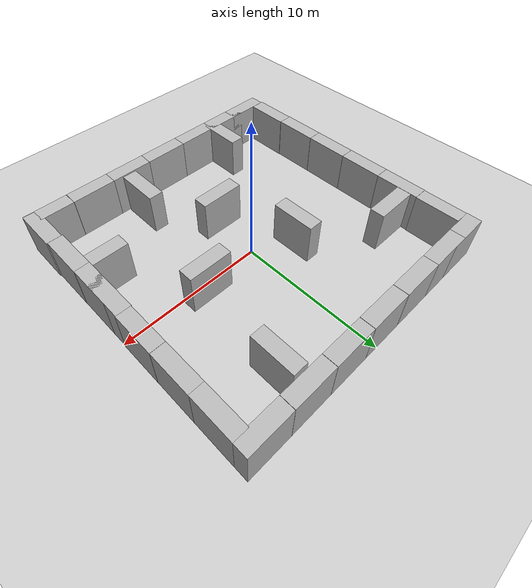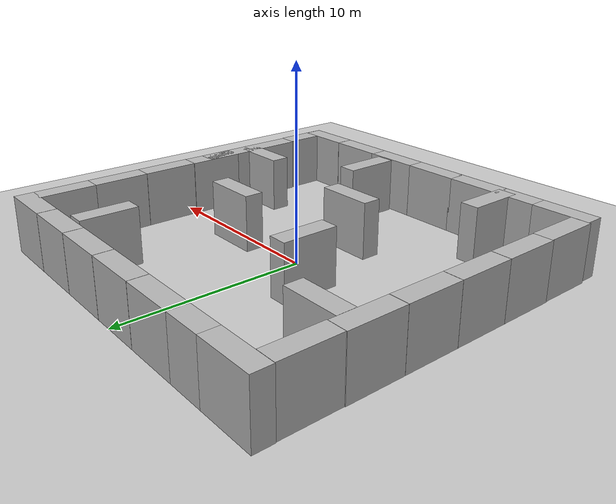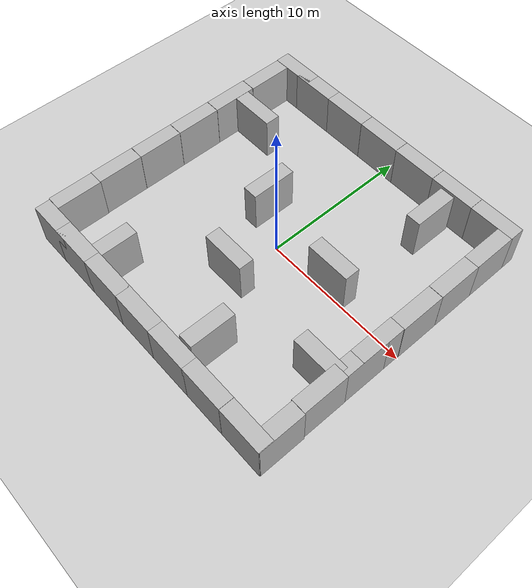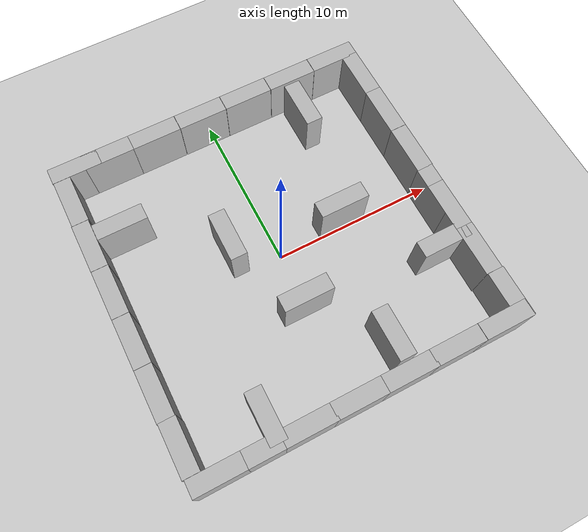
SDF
<sdf version="1.7">
 <world name="default">
  <model name="ground_plane">
   <static>1</static>
   <link name="link">
    <collision name="collision">
     <geometry><plane><normal>0 0 1</normal><size>100 100</size></plane></geometry>
     <surface>
      <contact><collide_bitmask>65535</collide_bitmask></contact>
      <friction><ode><mu>100</mu><mu2>50</mu2></ode></friction>
     </surface>
    </collision>
    <visual name="visual">
     <cast_shadows>0</cast_shadows>
     <geometry><plane><normal>0 0 1</normal><size>100 100</size></plane></geometry>
     <material>
      <script><uri>file://media/materials/scripts/gazebo.material</uri><name>Gazebo/Grey</name></script>
     </material>
    </visual>
   </link>
  </model>
  <model name="brick_box_3x1x3">
   <static>1</static>
   <link name="chassis">
    <pose>0 0 1.5 0 -0 0</pose>
    <collision name="collision"><geometry><box><size>3 1 3</size></box></geometry></collision>
    <visual name="visual">
     <geometry><mesh><uri>model://brick_box_3x1x3/meshes/simple_box.dae</uri><scale>3 1 3</scale></mesh></geometry>
     <material>
      <script>
       <uri>model://brick_box_3x1x3/materials/scripts</uri>
       <uri>model://brick_box_3x1x3/materials/textures</uri>
       <name>BrickBox/Diffuse</name>
      </script>
     </material>
    </visual>
   </link>
   <pose>8.4883 9.49696 0 0 -0 0</pose>
  </model>
  <model name="brick_box_3x1x3_0">
   <static>1</static>
   <link name="chassis">
    <pose>0 0 1.5 0 -0 0</pose>
    <collision name="collision"><geometry><box><size>3 1 3</size></box></geometry></collision>
    <visual name="visual">
     <geometry><mesh><uri>model://brick_box_3x1x3/meshes/simple_box.dae</uri><scale>3 1 3</scale></mesh></geometry>
     <material>
      <script>
       <uri>model://brick_box_3x1x3/materials/scripts</uri>
       <uri>model://brick_box_3x1x3/materials/textures</uri>
       <name>BrickBox/Diffuse</name>
      </script>
     </material>
    </visual>
   </link>
   <pose>5.47783 9.49696 0 0 -0 0</pose>
  </model>
  <model name="brick_box_3x1x3_1">
   <static>1</static>
   <link name="chassis">
    <pose>0 0 1.5 0 -0 0</pose>
    <collision name="collision"><geometry><box><size>3 1 3</size></box></geometry></collision>
    <visual name="visual">
     <geometry><mesh><uri>model://brick_box_3x1x3/meshes/simple_box.dae</uri><scale>3 1 3</scale></mesh></geometry>
     <material>
      <script>
       <uri>model://brick_box_3x1x3/materials/scripts</uri>
       <uri>model://brick_box_3x1x3/materials/textures</uri>
       <name>BrickBox/Diffuse</name>
      </script>
     </material>
    </visual>
   </link>
   <pose>2.46735 9.49696 0 0 -0 0</pose>
  </model>
  <model name="brick_box_3x1x3_2">
   <static>1</static>
   <link name="chassis">
    <pose>0 0 1.5 0 -0 0</pose>
    <collision name="collision"><geometry><box><size>3 1 3</size></box></geometry></collision>
    <visual name="visual">
     <geometry><mesh><uri>model://brick_box_3x1x3/meshes/simple_box.dae</uri><scale>3 1 3</scale></mesh></geometry>
     <material>
      <script>
       <uri>model://brick_box_3x1x3/materials/scripts</uri>
       <uri>model://brick_box_3x1x3/materials/textures</uri>
       <name>BrickBox/Diffuse</name>
      </script>
     </material>
    </visual>
   </link>
   <pose>-0.543123 9.49696 0 0 -0 0</pose>
  </model>
  <model name="brick_box_3x1x3_3">
   <static>1</static>
   <link name="chassis">
    <pose>0 0 1.5 0 -0 0</pose>
    <collision name="collision"><geometry><box><size>3 1 3</size></box></geometry></collision>
    <visual name="visual">
     <geometry><mesh><uri>model://brick_box_3x1x3/meshes/simple_box.dae</uri><scale>3 1 3</scale></mesh></geometry>
     <material>
      <script>
       <uri>model://brick_box_3x1x3/materials/scripts</uri>
       <uri>model://brick_box_3x1x3/materials/textures</uri>
       <name>BrickBox/Diffuse</name>
      </script>
     </material>
    </visual>
   </link>
   <pose>-3.5536 9.49696 0 0 -0 0</pose>
  </model>
  <model name="brick_box_3x1x3_4">
   <static>1</static>
   <link name="chassis">
    <pose>0 0 1.5 0 -0 0</pose>
    <collision name="collision"><geometry><box><size>3 1 3</size></box></geometry></collision>
    <visual name="visual">
     <geometry><mesh><uri>model://brick_box_3x1x3/meshes/simple_box.dae</uri><scale>3 1 3</scale></mesh></geometry>
     <material>
      <script>
       <uri>model://brick_box_3x1x3/materials/scripts</uri>
       <uri>model://brick_box_3x1x3/materials/textures</uri>
       <name>BrickBox/Diffuse</name>
      </script>
     </material>
    </visual>
   </link>
   <pose>-6.53304 9.49696 0 0 -0 0</pose>
  </model>
  <model name="brick_box_3x1x3_5">
   <static>1</static>
   <link name="chassis">
    <pose>0 0 1.5 0 -0 0</pose>
    <collision name="collision"><geometry><box><size>3 1 3</size></box></geometry></collision>
    <visual name="visual">
     <geometry><mesh><uri>model://brick_box_3x1x3/meshes/simple_box.dae</uri><scale>3 1 3</scale></mesh></geometry>
     <material>
      <script>
       <uri>model://brick_box_3x1x3/materials/scripts</uri>
       <uri>model://brick_box_3x1x3/materials/textures</uri>
       <name>BrickBox/Diffuse</name>
      </script>
     </material>
    </visual>
   </link>
   <pose>-8.55037 9.49697 0 0 -0 0</pose>
  </model>
  <model name="brick_box_3x1x3_6">
   <static>1</static>
   <link name="chassis">
    <pose>0 0 1.5 0 -0 0</pose>
    <collision name="collision"><geometry><box><size>3 1 3</size></box></geometry></collision>
    <visual name="visual">
     <geometry><mesh><uri>model://brick_box_3x1x3/meshes/simple_box.dae</uri><scale>3 1 3</scale></mesh></geometry>
     <material>
      <script>
       <uri>model://brick_box_3x1x3/materials/scripts</uri>
       <uri>model://brick_box_3x1x3/materials/textures</uri>
       <name>BrickBox/Diffuse</name>
      </script>
     </material>
    </visual>
   </link>
   <pose>8.48829 -9.528 0 0 -0 0</pose>
  </model>
  <model name="brick_box_3x1x3_7">
   <static>1</static>
   <link name="chassis">
    <pose>0 0 1.5 0 -0 0</pose>
    <collision name="collision"><geometry><box><size>3 1 3</size></box></geometry></collision>
    <visual name="visual">
     <geometry><mesh><uri>model://brick_box_3x1x3/meshes/simple_box.dae</uri><scale>3 1 3</scale></mesh></geometry>
     <material>
      <script>
       <uri>model://brick_box_3x1x3/materials/scripts</uri>
       <uri>model://brick_box_3x1x3/materials/textures</uri>
       <name>BrickBox/Diffuse</name>
      </script>
     </material>
    </visual>
   </link>
   <pose>5.47782 -9.528 0 0 -0 0</pose>
  </model>
  <model name="brick_box_3x1x3_8">
   <static>1</static>
   <link name="chassis">
    <pose>0 0 1.5 0 -0 0</pose>
    <collision name="collision"><geometry><box><size>3 1 3</size></box></geometry></collision>
    <visual name="visual">
     <geometry><mesh><uri>model://brick_box_3x1x3/meshes/simple_box.dae</uri><scale>3 1 3</scale></mesh></geometry>
     <material>
      <script>
       <uri>model://brick_box_3x1x3/materials/scripts</uri>
       <uri>model://brick_box_3x1x3/materials/textures</uri>
       <name>BrickBox/Diffuse</name>
      </script>
     </material>
    </visual>
   </link>
   <pose>2.56045 -9.528 0 0 -0 0</pose>
  </model>
  <model name="brick_box_3x1x3_9">
   <static>1</static>
   <link name="chassis">
    <pose>0 0 1.5 0 -0 0</pose>
    <collision name="collision"><geometry><box><size>3 1 3</size></box></geometry></collision>
    <visual name="visual">
     <geometry><mesh><uri>model://brick_box_3x1x3/meshes/simple_box.dae</uri><scale>3 1 3</scale></mesh></geometry>
     <material>
      <script>
       <uri>model://brick_box_3x1x3/materials/scripts</uri>
       <uri>model://brick_box_3x1x3/materials/textures</uri>
       <name>BrickBox/Diffuse</name>
      </script>
     </material>
    </visual>
   </link>
   <pose>-0.418988 -9.528 0 0 -0 0</pose>
  </model>
  <model name="brick_box_3x1x3_10">
   <static>1</static>
   <link name="chassis">
    <pose>0 0 1.5 0 -0 0</pose>
    <collision name="collision"><geometry><box><size>3 1 3</size></box></geometry></collision>
    <visual name="visual">
     <geometry><mesh><uri>model://brick_box_3x1x3/meshes/simple_box.dae</uri><scale>3 1 3</scale></mesh></geometry>
     <material>
      <script>
       <uri>model://brick_box_3x1x3/materials/scripts</uri>
       <uri>model://brick_box_3x1x3/materials/textures</uri>
       <name>BrickBox/Diffuse</name>
      </script>
     </material>
    </visual>
   </link>
   <pose>-3.33635 -9.528 0 0 -0 0</pose>
  </model>
  <model name="brick_box_3x1x3_11">
   <static>1</static>
   <link name="chassis">
    <pose>0 0 1.5 0 -0 0</pose>
    <collision name="collision"><geometry><box><size>3 1 3</size></box></geometry></collision>
    <visual name="visual">
     <geometry><mesh><uri>model://brick_box_3x1x3/meshes/simple_box.dae</uri><scale>3 1 3</scale></mesh></geometry>
     <material>
      <script>
       <uri>model://brick_box_3x1x3/materials/scripts</uri>
       <uri>model://brick_box_3x1x3/materials/textures</uri>
       <name>BrickBox/Diffuse</name>
      </script>
     </material>
    </visual>
   </link>
   <pose>-6.22269 -9.528 0 0 -0 0</pose>
  </model>
  <model name="brick_box_3x1x3_12">
   <static>1</static>
   <link name="chassis">
    <pose>0 0 1.5 0 -0 0</pose>
    <collision name="collision"><geometry><box><size>3 1 3</size></box></geometry></collision>
    <visual name="visual">
     <geometry><mesh><uri>model://brick_box_3x1x3/meshes/simple_box.dae</uri><scale>3 1 3</scale></mesh></geometry>
     <material>
      <script>
       <uri>model://brick_box_3x1x3/materials/scripts</uri>
       <uri>model://brick_box_3x1x3/materials/textures</uri>
       <name>BrickBox/Diffuse</name>
      </script>
     </material>
    </visual>
   </link>
   <pose>-8.42623 -9.528 0 0 -0 0</pose>
  </model>
  <model name="brick_box_3x1x3_5_clone_clone">
   <static>1</static>
   <link name="chassis">
    <pose>0 0 1.5 0 -0 0</pose>
    <collision name="collision"><geometry><box><size>3 1 3</size></box></geometry></collision>
    <visual name="visual">
     <geometry><mesh><uri>model://brick_box_3x1x3/meshes/simple_box.dae</uri><scale>3 1 3</scale></mesh></geometry>
     <material>
      <script>
       <uri>model://brick_box_3x1x3/materials/scripts</uri>
       <uri>model://brick_box_3x1x3/materials/textures</uri>
       <name>BrickBox/Diffuse</name>
      </script>
     </material>
    </visual>
   </link>
   <pose>-9.52076 7.4886 0 0 -0 1.57</pose>
  </model>
  <model name="brick_box_3x1x3_5_clone_clone_clone">
   <static>1</static>
   <link name="chassis">
    <pose>0 0 1.5 0 -0 0</pose>
    <collision name="collision"><geometry><box><size>3 1 3</size></box></geometry></collision>
    <visual name="visual">
     <geometry><mesh><uri>model://brick_box_3x1x3/meshes/simple_box.dae</uri><scale>3 1 3</scale></mesh></geometry>
     <material>
      <script>
       <uri>model://brick_box_3x1x3/materials/scripts</uri>
       <uri>model://brick_box_3x1x3/materials/textures</uri>
       <name>BrickBox/Diffuse</name>
      </script>
     </material>
    </visual>
   </link>
   <pose>-9.55276 4.48036 0 0 -0 1.57</pose>
  </model>
  <model name="brick_box_3x1x3_5_clone_clone_clone_clone">
   <static>1</static>
   <link name="chassis">
    <pose>0 0 1.5 0 -0 0</pose>
    <collision name="collision"><geometry><box><size>3 1 3</size></box></geometry></collision>
    <visual name="visual">
     <geometry><mesh><uri>model://brick_box_3x1x3/meshes/simple_box.dae</uri><scale>3 1 3</scale></mesh></geometry>
     <material>
      <script>
       <uri>model://brick_box_3x1x3/materials/scripts</uri>
       <uri>model://brick_box_3x1x3/materials/textures</uri>
       <name>BrickBox/Diffuse</name>
      </script>
     </material>
    </visual>
   </link>
   <pose>-9.55276 1.47212 0 0 -0 1.57</pose>
  </model>
  <model name="brick_box_3x1x3_5_clone_clone_clone_clone_0">
   <static>1</static>
   <link name="chassis">
    <pose>0 0 1.5 0 -0 0</pose>
    <collision name="collision"><geometry><box><size>3 1 3</size></box></geometry></collision>
    <visual name="visual">
     <geometry><mesh><uri>model://brick_box_3x1x3/meshes/simple_box.dae</uri><scale>3 1 3</scale></mesh></geometry>
     <material>
      <script>
       <uri>model://brick_box_3x1x3/materials/scripts</uri>
       <uri>model://brick_box_3x1x3/materials/textures</uri>
       <name>BrickBox/Diffuse</name>
      </script>
     </material>
    </visual>
   </link>
   <pose>-9.55276 -1.53612 0 0 -0 1.57</pose>
  </model>
  <model name="brick_box_3x1x3_5_clone_clone_clone_clone_1">
   <static>1</static>
   <link name="chassis">
    <pose>0 0 1.5 0 -0 0</pose>
    <collision name="collision"><geometry><box><size>3 1 3</size></box></geometry></collision>
    <visual name="visual">
     <geometry><mesh><uri>model://brick_box_3x1x3/meshes/simple_box.dae</uri><scale>3 1 3</scale></mesh></geometry>
     <material>
      <script>
       <uri>model://brick_box_3x1x3/materials/scripts</uri>
       <uri>model://brick_box_3x1x3/materials/textures</uri>
       <name>BrickBox/Diffuse</name>
      </script>
     </material>
    </visual>
   </link>
   <pose>-9.55276 -4.54436 0 0 -0 1.57</pose>
  </model>
  <model name="brick_box_3x1x3_5_clone_clone_clone_clone_2">
   <static>1</static>
   <link name="chassis">
    <pose>0 0 1.5 0 -0 0</pose>
    <collision name="collision"><geometry><box><size>3 1 3</size></box></geometry></collision>
    <visual name="visual">
     <geometry><mesh><uri>model://brick_box_3x1x3/meshes/simple_box.dae</uri><scale>3 1 3</scale></mesh></geometry>
     <material>
      <script>
       <uri>model://brick_box_3x1x3/materials/scripts</uri>
       <uri>model://brick_box_3x1x3/materials/textures</uri>
       <name>BrickBox/Diffuse</name>
      </script>
     </material>
    </visual>
   </link>
   <pose>-9.52076 -7.5206 0 0 -0 1.57</pose>
  </model>
  <model name="brick_box_3x1x3_5_clone_clone_clone_clone_3">
   <static>1</static>
   <link name="chassis">
    <pose>0 0 1.5 0 -0 0</pose>
    <collision name="collision"><geometry><box><size>3 1 3</size></box></geometry></collision>
    <visual name="visual">
     <geometry><mesh><uri>model://brick_box_3x1x3/meshes/simple_box.dae</uri><scale>3 1 3</scale></mesh></geometry>
     <material>
      <script>
       <uri>model://brick_box_3x1x3/materials/scripts</uri>
       <uri>model://brick_box_3x1x3/materials/textures</uri>
       <name>BrickBox/Diffuse</name>
      </script>
     </material>
    </visual>
   </link>
   <pose>9.48876 7.5846 0 0 -0 1.57</pose>
  </model>
  <model name="brick_box_3x1x3_5_clone_clone_clone_clone_4">
   <static>1</static>
   <link name="chassis">
    <pose>0 0 1.5 0 -0 0</pose>
    <collision name="collision"><geometry><box><size>3 1 3</size></box></geometry></collision>
    <visual name="visual">
     <geometry><mesh><uri>model://brick_box_3x1x3/meshes/simple_box.dae</uri><scale>3 1 3</scale></mesh></geometry>
     <material>
      <script>
       <uri>model://brick_box_3x1x3/materials/scripts</uri>
       <uri>model://brick_box_3x1x3/materials/textures</uri>
       <name>BrickBox/Diffuse</name>
      </script>
     </material>
    </visual>
   </link>
   <pose>9.48876 4.64037 0 0 -0 1.57</pose>
  </model>
  <model name="brick_box_3x1x3_5_clone_clone_clone_clone_5">
   <static>1</static>
   <link name="chassis">
    <pose>0 0 1.5 0 -0 0</pose>
    <collision name="collision"><geometry><box><size>3 1 3</size></box></geometry></collision>
    <visual name="visual">
     <geometry><mesh><uri>model://brick_box_3x1x3/meshes/simple_box.dae</uri><scale>3 1 3</scale></mesh></geometry>
     <material>
      <script>
       <uri>model://brick_box_3x1x3/materials/scripts</uri>
       <uri>model://brick_box_3x1x3/materials/textures</uri>
       <name>BrickBox/Diffuse</name>
      </script>
     </material>
    </visual>
   </link>
   <pose>9.48876 1.63213 0 0 -0 1.57</pose>
  </model>
  <model name="brick_box_3x1x3_5_clone_clone_clone_clone_6">
   <static>1</static>
   <link name="chassis">
    <pose>0 0 1.5 0 -0 0</pose>
    <collision name="collision"><geometry><box><size>3 1 3</size></box></geometry></collision>
    <visual name="visual">
     <geometry><mesh><uri>model://brick_box_3x1x3/meshes/simple_box.dae</uri><scale>3 1 3</scale></mesh></geometry>
     <material>
      <script>
       <uri>model://brick_box_3x1x3/materials/scripts</uri>
       <uri>model://brick_box_3x1x3/materials/textures</uri>
       <name>BrickBox/Diffuse</name>
      </script>
     </material>
    </visual>
   </link>
   <pose>9.45675 -1.34411 0 0 -0 1.57</pose>
  </model>
  <model name="brick_box_3x1x3_5_clone_clone_clone_clone_8">
   <static>1</static>
   <link name="chassis">
    <pose>0 0 1.5 0 -0 0</pose>
    <collision name="collision"><geometry><box><size>3 1 3</size></box></geometry></collision>
    <visual name="visual">
     <geometry><mesh><uri>model://brick_box_3x1x3/meshes/simple_box.dae</uri><scale>3 1 3</scale></mesh></geometry>
     <material>
      <script>
       <uri>model://brick_box_3x1x3/materials/scripts</uri>
       <uri>model://brick_box_3x1x3/materials/textures</uri>
       <name>BrickBox/Diffuse</name>
      </script>
     </material>
    </visual>
   </link>
   <pose>9.52076 -8.48068 0 0 -0 1.57</pose>
  </model>
  <model name="brick_box_3x1x3_5_clone_clone_clone_clone_7">
   <static>1</static>
   <link name="chassis">
    <pose>0 0 1.5 0 -0 0</pose>
    <collision name="collision"><geometry><box><size>3 1 3</size></box></geometry></collision>
    <visual name="visual">
     <geometry><mesh><uri>model://brick_box_3x1x3/meshes/simple_box.dae</uri><scale>3 1 3</scale></mesh></geometry>
     <material>
      <script>
       <uri>model://brick_box_3x1x3/materials/scripts</uri>
       <uri>model://brick_box_3x1x3/materials/textures</uri>
       <name>BrickBox/Diffuse</name>
      </script>
     </material>
    </visual>
   </link>
   <pose>9.45675 -2.4962 0 0 -0 1.57</pose>
  </model>
  <model name="brick_box_3x1x3_5_clone_clone_clone_clone_10_clone">
   <static>1</static>
   <link name="chassis">
    <pose>0 0 1.5 0 -0 0</pose>
    <collision name="collision"><geometry><box><size>3 1 3</size></box></geometry></collision>
    <visual name="visual">
     <geometry><mesh><uri>model://brick_box_3x1x3/meshes/simple_box.dae</uri><scale>3 1 3</scale></mesh></geometry>
     <material>
      <script>
       <uri>model://brick_box_3x1x3/materials/scripts</uri>
       <uri>model://brick_box_3x1x3/materials/textures</uri>
       <name>BrickBox/Diffuse</name>
      </script>
     </material>
    </visual>
   </link>
   <pose>9.46409 -5.47609 0 0 -0 1.57</pose>
  </model>
  <model name="brick_box_3x1x3_clone_0_clone">
   <static>1</static>
   <link name="chassis">
    <pose>0 0 1.5 0 -0 0</pose>
    <collision name="collision"><geometry><box><size>3 1 3</size></box></geometry></collision>
    <visual name="visual">
     <geometry><mesh><uri>model://brick_box_3x1x3/meshes/simple_box.dae</uri><scale>3 1 3</scale></mesh></geometry>
     <material>
      <script>
       <uri>model://brick_box_3x1x3/materials/scripts</uri>
       <uri>model://brick_box_3x1x3/materials/textures</uri>
       <name>BrickBox/Diffuse</name>
      </script>
     </material>
    </visual>
   </link>
   <pose>4.19243 0.55899 0 0 -0 0</pose>
  </model>
  <model name="brick_box_3x1x3_clone_0_clone_clone">
   <static>1</static>
   <link name="chassis">
    <pose>0 0 1.5 0 -0 0</pose>
    <collision name="collision"><geometry><box><size>3 1 3</size></box></geometry></collision>
    <visual name="visual">
     <geometry><mesh><uri>model://brick_box_3x1x3/meshes/simple_box.dae</uri><scale>3 1 3</scale></mesh></geometry>
     <material>
      <script>
       <uri>model://brick_box_3x1x3/materials/scripts</uri>
       <uri>model://brick_box_3x1x3/materials/textures</uri>
       <name>BrickBox/Diffuse</name>
      </script>
     </material>
    </visual>
   </link>
   <pose>-7.54638 5.06819 0 0 -0 0</pose>
  </model>
  <model name="brick_box_3x1x3_5_clone_clone_clone_clone_15_clone_0">
   <static>1</static>
   <link name="chassis">
    <pose>0 0 1.5 0 -0 0</pose>
    <collision name="collision"><geometry><box><size>3 1 3</size></box></geometry></collision>
    <visual name="visual">
     <geometry><mesh><uri>model://brick_box_3x1x3/meshes/simple_box.dae</uri><scale>3 1 3</scale></mesh></geometry>
     <material>
      <script>
       <uri>model://brick_box_3x1x3/materials/scripts</uri>
       <uri>model://brick_box_3x1x3/materials/textures</uri>
       <name>BrickBox/Diffuse</name>
      </script>
     </material>
    </visual>
   </link>
   <pose>5.31042 7.34142 0 0 -0 1.57</pose>
  </model>
  <model name="brick_box_3x1x3_5_clone_clone_clone_clone_15_clone_clone">
   <static>1</static>
   <link name="chassis">
    <pose>0 0 1.5 0 -0 0</pose>
    <collision name="collision"><geometry><box><size>3 1 3</size></box></geometry></collision>
    <visual name="visual">
     <geometry><mesh><uri>model://brick_box_3x1x3/meshes/simple_box.dae</uri><scale>3 1 3</scale></mesh></geometry>
     <material>
      <script>
       <uri>model://brick_box_3x1x3/materials/scripts</uri>
       <uri>model://brick_box_3x1x3/materials/textures</uri>
       <name>BrickBox/Diffuse</name>
      </script>
     </material>
    </visual>
   </link>
   <pose>-5.04956 -8.124 0 0 -0 1.57</pose>
  </model>
  <model name="brick_box_3x1x3_clone_0_clone_clone_0">
   <static>1</static>
   <link name="chassis">
    <pose>0 0 1.5 0 -0 0</pose>
    <collision name="collision"><geometry><box><size>3 1 3</size></box></geometry></collision>
    <visual name="visual">
     <geometry><mesh><uri>model://brick_box_3x1x3/meshes/simple_box.dae</uri><scale>3 1 3</scale></mesh></geometry>
     <material>
      <script>
       <uri>model://brick_box_3x1x3/materials/scripts</uri>
       <uri>model://brick_box_3x1x3/materials/textures</uri>
       <name>BrickBox/Diffuse</name>
      </script>
     </material>
    </visual>
   </link>
   <pose>8.0681 -4.13654 0 0 -0 0</pose>
  </model>
  <model name="brick_box_3x1x3_5_clone_clone_clone_clone_15_clone_clone_clone_clone">
   <static>1</static>
   <link name="chassis">
    <pose>0 0 1.5 0 -0 0</pose>
    <collision name="collision"><geometry><box><size>3 1 3</size></box></geometry></collision>
    <visual name="visual">
     <geometry><mesh><uri>model://brick_box_3x1x3/meshes/simple_box.dae</uri><scale>3 1 3</scale></mesh></geometry>
     <material>
      <script>
       <uri>model://brick_box_3x1x3/materials/scripts</uri>
       <uri>model://brick_box_3x1x3/materials/textures</uri>
       <name>BrickBox/Diffuse</name>
      </script>
     </material>
    </visual>
   </link>
   <pose>2.84673 -7.4072 0 0 -0 1.57</pose>
  </model>
  <model name="brick_box_3x1x3_clone_0_clone_clone_1">
   <static>1</static>
   <link name="chassis">
    <pose>0 0 1.5 0 -0 0</pose>
    <collision name="collision"><geometry><box><size>3 1 3</size></box></geometry></collision>
    <visual name="visual">
     <geometry><mesh><uri>model://brick_box_3x1x3/meshes/simple_box.dae</uri><scale>3 1 3</scale></mesh></geometry>
     <material>
      <script>
       <uri>model://brick_box_3x1x3/materials/scripts</uri>
       <uri>model://brick_box_3x1x3/materials/textures</uri>
       <name>BrickBox/Diffuse</name>
      </script>
     </material>
    </visual>
   </link>
   <pose>-0.214773 -3.36602 0 0 -0 0</pose>
  </model>
  <model name="brick_box_3x1x3_5_clone_clone_clone_clone_15_clone_0_clone">
   <static>1</static>
   <link name="chassis">
    <pose>0 0 1.5 0 -0 0</pose>
    <collision name="collision"><geometry><box><size>3 1 3</size></box></geometry></collision>
    <visual name="visual">
     <geometry><mesh><uri>model://brick_box_3x1x3/meshes/simple_box.dae</uri><scale>3 1 3</scale></mesh></geometry>
     <material>
      <script>
       <uri>model://brick_box_3x1x3/materials/scripts</uri>
       <uri>model://brick_box_3x1x3/materials/textures</uri>
       <name>BrickBox/Diffuse</name>
      </script>
     </material>
    </visual>
   </link>
   <pose>-2.50068 1.61393 0 0 -0 1.57</pose>
  </model>
 </world>
</sdf>
